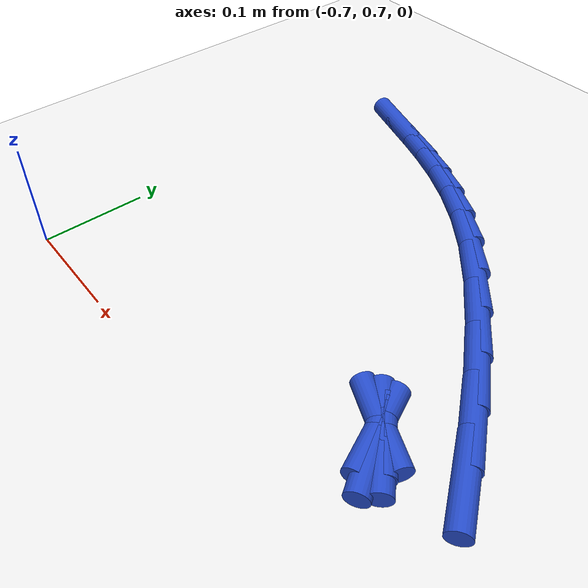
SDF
<sdf version="1.6">
 <world name="default">
  <model name="ground_plane">
   <static>1</static>
   <link name="link">
    <collision name="collision">
     <geometry><plane><normal>0 0 1</normal><size>100 100</size></plane></geometry>
     <surface><friction><ode><mu>100</mu><mu2>50</mu2></ode></friction></surface>
    </collision>
    <visual name="visual">
     <cast_shadows>0</cast_shadows>
     <geometry><plane><normal>0 0 1</normal><size>100 100</size></plane></geometry>
     <material>
      <script><uri>file://media/materials/scripts/gazebo.material</uri><name>Gazebo/WhiteGlow</name></script>
     </material>
    </visual>
   </link>
  </model>
  <model name="line">
   <link name="link_22">
    <pose>-0.3501832365533219 0.7809434465137919 0.01 0 1.57 -1.0274520968835432</pose>
    <collision name="collision">
     <geometry><cylinder><radius>0.01</radius><length>0.08</length></cylinder></geometry>
    </collision>
    <visual name="visual">
     <material>
      <script><name>Gazebo/Blue</name><uri>file://media/materials/scripts/gazebo.material</uri></script>
     </material>
     <geometry><cylinder><radius>0.01</radius><length>0.08</length></cylinder></geometry>
    </visual>
   </link>
   <link name="link_23">
    <pose>-0.3575235214836482 0.79309654527169 0.01 0 1.57 -1.1816552442879247</pose>
    <collision name="collision">
     <geometry><cylinder><radius>0.01</radius><length>0.08</length></cylinder></geometry>
    </collision>
    <visual name="visual">
     <material>
      <script><name>Gazebo/Blue</name><uri>file://media/materials/scripts/gazebo.material</uri></script>
     </material>
     <geometry><cylinder><radius>0.01</radius><length>0.08</length></cylinder></geometry>
    </visual>
   </link>
   <link name="link_24">
    <pose>-0.3598334753515678 0.7987298752895919 0.01 0 1.57 -0.4234334483090144</pose>
    <collision name="collision">
     <geometry><cylinder><radius>0.01</radius><length>0.08</length></cylinder></geometry>
    </collision>
    <visual name="visual">
     <material>
      <script><name>Gazebo/Blue</name><uri>file://media/materials/scripts/gazebo.material</uri></script>
     </material>
     <geometry><cylinder><radius>0.01</radius><length>0.08</length></cylinder></geometry>
    </visual>
   </link>
   <link name="link_25">
    <pose>-0.35654327839908617 0.7972469932052473 0.01 0 1.57 -0.7712141787073871</pose>
    <collision name="collision">
     <geometry><cylinder><radius>0.01</radius><length>0.08</length></cylinder></geometry>
    </collision>
    <visual name="visual">
     <material>
      <script><name>Gazebo/Blue</name><uri>file://media/materials/scripts/gazebo.material</uri></script>
     </material>
     <geometry><cylinder><radius>0.01</radius><length>0.08</length></cylinder></geometry>
    </visual>
   </link>
   <link name="link_26">
    <pose>-0.3470831108682083 0.7880514556564053 0.01 0 1.57 -0.8240149284664824</pose>
    <collision name="collision">
     <geometry><cylinder><radius>0.01</radius><length>0.08</length></cylinder></geometry>
    </collision>
    <visual name="visual">
     <material>
      <script><name>Gazebo/Blue</name><uri>file://media/materials/scripts/gazebo.material</uri></script>
     </material>
     <geometry><cylinder><radius>0.01</radius><length>0.08</length></cylinder></geometry>
    </visual>
   </link>
   <link name="link_38">
    <pose>-0.2933432619747191 0.812009903996481 0.01 0 1.57 -0.9754913485099312</pose>
    <collision name="collision">
     <geometry><cylinder><radius>0.01</radius><length>0.08</length></cylinder></geometry>
    </collision>
    <visual name="visual">
     <material>
      <script><name>Gazebo/Blue</name><uri>file://media/materials/scripts/gazebo.material</uri></script>
     </material>
     <geometry><cylinder><radius>0.01</radius><length>0.08</length></cylinder></geometry>
    </visual>
   </link>
   <link name="link_39">
    <pose>-0.32002007709307195 0.8513988620431314 0.01 0 1.57 -0.9360685299195783</pose>
    <collision name="collision">
     <geometry><cylinder><radius>0.01</radius><length>0.08</length></cylinder></geometry>
    </collision>
    <visual name="visual">
     <material>
      <script><name>Gazebo/Blue</name><uri>file://media/materials/scripts/gazebo.material</uri></script>
     </material>
     <geometry><cylinder><radius>0.01</radius><length>0.08</length></cylinder></geometry>
    </visual>
   </link>
   <link name="link_40">
    <pose>-0.34910612677688396 0.8908975062448835 0.01 0 1.57 -0.8909538688888938</pose>
    <collision name="collision">
     <geometry><cylinder><radius>0.01</radius><length>0.08</length></cylinder></geometry>
    </collision>
    <visual name="visual">
     <material>
      <script><name>Gazebo/Blue</name><uri>file://media/materials/scripts/gazebo.material</uri></script>
     </material>
     <geometry><cylinder><radius>0.01</radius><length>0.08</length></cylinder></geometry>
    </visual>
   </link>
   <link name="link_41">
    <pose>-0.3798162713483267 0.9288862649042571 0.01 0 1.57 -0.835203069238861</pose>
    <collision name="collision">
     <geometry><cylinder><radius>0.01</radius><length>0.08</length></cylinder></geometry>
    </collision>
    <visual name="visual">
     <material>
      <script><name>Gazebo/Blue</name><uri>file://media/materials/scripts/gazebo.material</uri></script>
     </material>
     <geometry><cylinder><radius>0.01</radius><length>0.08</length></cylinder></geometry>
    </visual>
   </link>
   <link name="link_42">
    <pose>-0.41136537112957083 0.9637455663237696 0.01 0 1.57 -0.7612328210769039</pose>
    <collision name="collision">
     <geometry><cylinder><radius>0.01</radius><length>0.08</length></cylinder></geometry>
    </collision>
    <visual name="visual">
     <material>
      <script><name>Gazebo/Blue</name><uri>file://media/materials/scripts/gazebo.material</uri></script>
     </material>
     <geometry><cylinder><radius>0.01</radius><length>0.08</length></cylinder></geometry>
    </visual>
   </link>
   <link name="link_43">
    <pose>-0.44296873541837195 0.993857274393652 0.01 0 1.57 -0.6655791075287187</pose>
    <collision name="collision">
     <geometry><cylinder><radius>0.01</radius><length>0.08</length></cylinder></geometry>
    </collision>
    <visual name="visual">
     <material>
      <script><name>Gazebo/Blue</name><uri>file://media/materials/scripts/gazebo.material</uri></script>
     </material>
     <geometry><cylinder><radius>0.01</radius><length>0.08</length></cylinder></geometry>
    </visual>
   </link>
   <link name="link_44">
    <pose>-0.47404556082668414 1.0182551773696116 0.01 0 1.57 -0.5665526695248854</pose>
    <collision name="collision">
     <geometry><cylinder><radius>0.01</radius><length>0.08</length></cylinder></geometry>
    </collision>
    <visual name="visual">
     <material>
      <script><name>Gazebo/Blue</name><uri>file://media/materials/scripts/gazebo.material</uri></script>
     </material>
     <geometry><cylinder><radius>0.01</radius><length>0.08</length></cylinder></geometry>
    </visual>
   </link>
   <link name="link_45">
    <pose>-0.5045406128687585 1.0376535563545468 0.01 0 1.57 -0.47452770525399474</pose>
    <collision name="collision">
     <geometry><cylinder><radius>0.01</radius><length>0.08</length></cylinder></geometry>
    </collision>
    <visual name="visual">
     <material>
      <script><name>Gazebo/Blue</name><uri>file://media/materials/scripts/gazebo.material</uri></script>
     </material>
     <geometry><cylinder><radius>0.01</radius><length>0.08</length></cylinder></geometry>
    </visual>
   </link>
   <link name="link_46">
    <pose>-0.534482193994335 1.0530337996221815 0.01 0 1.57 -0.39729859071451834</pose>
    <collision name="collision">
     <geometry><cylinder><radius>0.01</radius><length>0.08</length></cylinder></geometry>
    </collision>
    <visual name="visual">
     <material>
      <script><name>Gazebo/Blue</name><uri>file://media/materials/scripts/gazebo.material</uri></script>
     </material>
     <geometry><cylinder><radius>0.01</radius><length>0.08</length></cylinder></geometry>
    </visual>
   </link>
   <link name="link_47">
    <pose>-0.5638986066531552 1.0653772954462397 0.01 0 1.57 -0.34178834530915303</pose>
    <collision name="collision">
     <geometry><cylinder><radius>0.01</radius><length>0.08</length></cylinder></geometry>
    </collision>
    <visual name="visual">
     <material>
      <script><name>Gazebo/Blue</name><uri>file://media/materials/scripts/gazebo.material</uri></script>
     </material>
     <geometry><cylinder><radius>0.01</radius><length>0.08</length></cylinder></geometry>
    </visual>
   </link>
   <link name="link_48">
    <pose>-0.5928181532949586 1.0756654321004455 0.01 0 1.57 -0.3132014292212567</pose>
    <collision name="collision">
     <geometry><cylinder><radius>0.01</radius><length>0.08</length></cylinder></geometry>
    </collision>
    <visual name="visual">
     <material>
      <script><name>Gazebo/Blue</name><uri>file://media/materials/scripts/gazebo.material</uri></script>
     </material>
     <geometry><cylinder><radius>0.01</radius><length>0.08</length></cylinder></geometry>
    </visual>
   </link>
   <link name="link_49">
    <pose>-0.6212691363694862 1.0848795978585228 0.01 0 1.57 -0.31481618833116337</pose>
    <collision name="collision">
     <geometry><cylinder><radius>0.01</radius><length>0.08</length></cylinder></geometry>
    </collision>
    <visual name="visual">
     <material>
      <script><name>Gazebo/Blue</name><uri>file://media/materials/scripts/gazebo.material</uri></script>
     </material>
     <geometry><cylinder><radius>0.01</radius><length>0.08</length></cylinder></geometry>
    </visual>
   </link>
  </model>
 </world>
</sdf>
